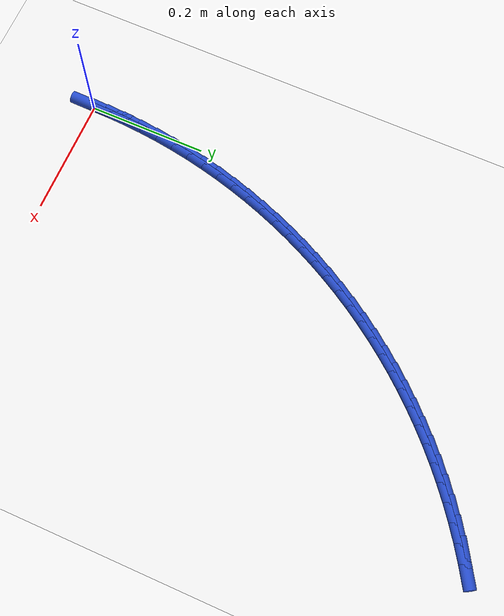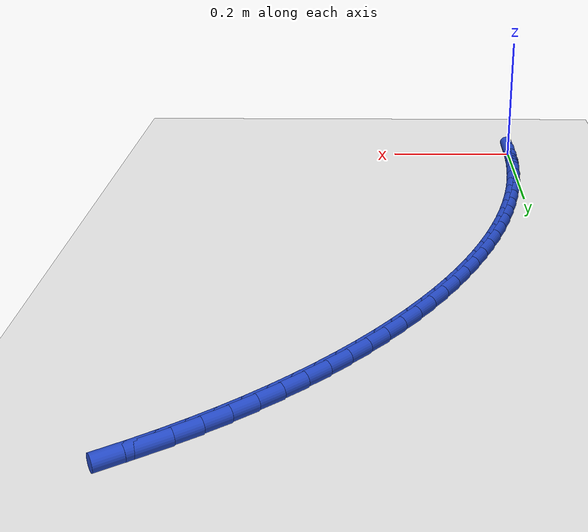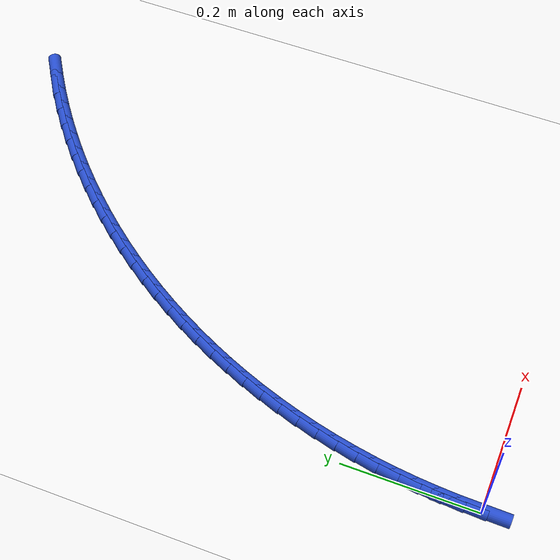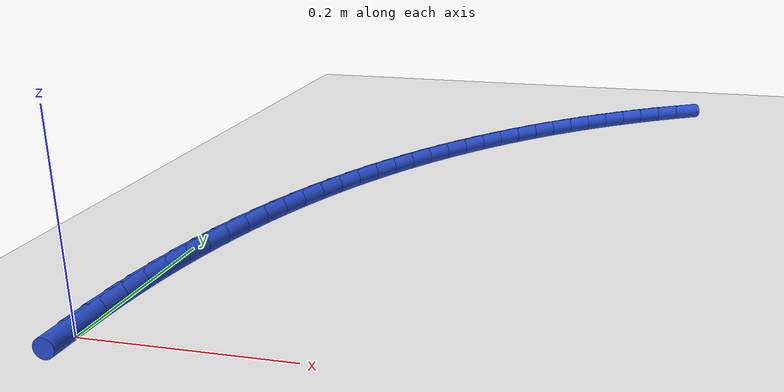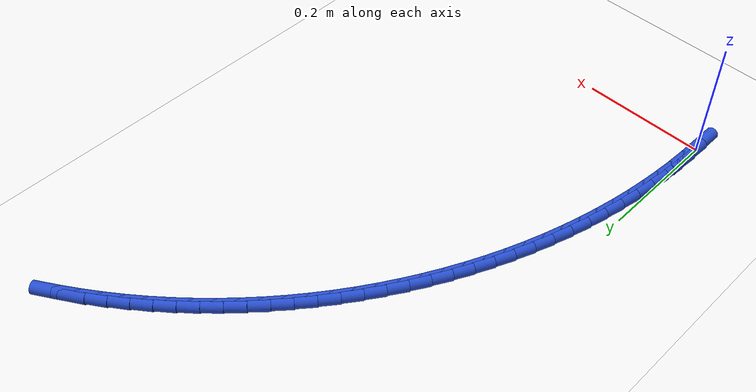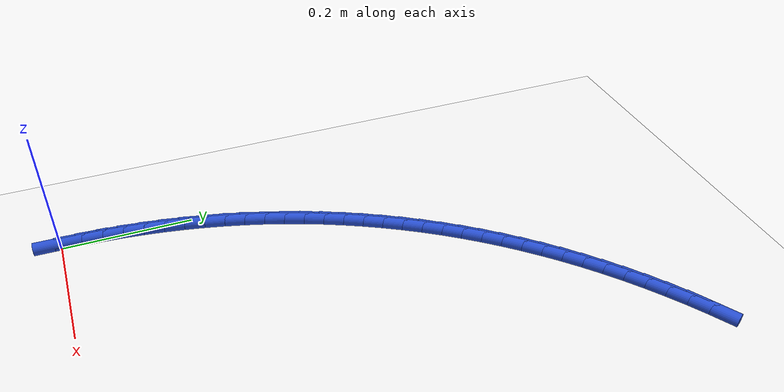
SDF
<sdf version="1.6">
 <world name="default">
  <model name="ground_plane">
   <static>1</static>
   <link name="link">
    <collision name="collision">
     <geometry><plane><normal>0 0 1</normal><size>100 100</size></plane></geometry>
     <surface><friction><ode><mu>100</mu><mu2>50</mu2></ode></friction></surface>
    </collision>
    <visual name="visual">
     <cast_shadows>0</cast_shadows>
     <geometry><plane><normal>0 0 1</normal><size>100 100</size></plane></geometry>
     <material>
      <script><uri>file://media/materials/scripts/gazebo.material</uri><name>Gazebo/WhiteGlow</name></script>
     </material>
    </visual>
   </link>
  </model>
  <model name="line">
   <static>1</static>
   <link name="link_0">
    <pose>-1.734723475976807e-18 -4.163336342344337e-17 0.01 0 1.57 1.5549824605830722</pose>
    <collision name="collision">
     <geometry><cylinder><radius>0.01</radius><length>0.08</length></cylinder></geometry>
    </collision>
    <visual name="visual">
     <material>
      <script><name>Gazebo/Blue</name><uri>file://media/materials/scripts/gazebo.material</uri></script>
     </material>
     <geometry><cylinder><radius>0.01</radius><length>0.08</length></cylinder></geometry>
    </visual>
   </link>
   <static>1</static>
   <link name="link_1">
    <pose>0.0004967404176957579 0.03140908126714605 0.01 0 1.57 1.5234431790212397</pose>
    <collision name="collision">
     <geometry><cylinder><radius>0.01</radius><length>0.08</length></cylinder></geometry>
    </collision>
    <visual name="visual">
     <material>
      <script><name>Gazebo/Blue</name><uri>file://media/materials/scripts/gazebo.material</uri></script>
     </material>
     <geometry><cylinder><radius>0.01</radius><length>0.08</length></cylinder></geometry>
    </visual>
   </link>
   <static>1</static>
   <link name="link_2">
    <pose>0.001983714746050896 0.06278741212037388 0.01 0 1.57 1.492013745148784</pose>
    <collision name="collision">
     <geometry><cylinder><radius>0.01</radius><length>0.08</length></cylinder></geometry>
    </collision>
    <visual name="visual">
     <material>
      <script><name>Gazebo/Blue</name><uri>file://media/materials/scripts/gazebo.material</uri></script>
     </material>
     <geometry><cylinder><radius>0.01</radius><length>0.08</length></cylinder></geometry>
    </visual>
   </link>
   <static>1</static>
   <link name="link_3">
    <pose>0.004456052597967216 0.09410424214576518 0.01 0 1.57 1.460663230333921</pose>
    <collision name="collision">
     <geometry><cylinder><radius>0.01</radius><length>0.08</length></cylinder></geometry>
    </collision>
    <visual name="visual">
     <material>
      <script><name>Gazebo/Blue</name><uri>file://media/materials/scripts/gazebo.material</uri></script>
     </material>
     <geometry><cylinder><radius>0.01</radius><length>0.08</length></cylinder></geometry>
    </visual>
   </link>
   <static>1</static>
   <link name="link_4">
    <pose>0.007908883586346534 0.1253288209294017 0.01 0 1.57 1.4293602481064798</pose>
    <collision name="collision">
     <geometry><cylinder><radius>0.01</radius><length>0.08</length></cylinder></geometry>
    </collision>
    <visual name="visual">
     <material>
      <script><name>Gazebo/Blue</name><uri>file://media/materials/scripts/gazebo.material</uri></script>
     </material>
     <geometry><cylinder><radius>0.01</radius><length>0.08</length></cylinder></geometry>
    </visual>
   </link>
   <static>1</static>
   <link name="link_5">
    <pose>0.012337337324090649 0.15643039805736514 0.01 0 1.57 1.3980731401243338</pose>
    <collision name="collision">
     <geometry><cylinder><radius>0.01</radius><length>0.08</length></cylinder></geometry>
    </collision>
    <visual name="visual">
     <material>
      <script><name>Gazebo/Blue</name><uri>file://media/materials/scripts/gazebo.material</uri></script>
     </material>
     <geometry><cylinder><radius>0.01</radius><length>0.08</length></cylinder></geometry>
    </visual>
   </link>
   <static>1</static>
   <link name="link_6">
    <pose>0.017736543424101373 0.18737822311573732 0.01 0 1.57 1.3667701578968918</pose>
    <collision name="collision">
     <geometry><cylinder><radius>0.01</radius><length>0.08</length></cylinder></geometry>
    </collision>
    <visual name="visual">
     <material>
      <script><name>Gazebo/Blue</name><uri>file://media/materials/scripts/gazebo.material</uri></script>
     </material>
     <geometry><cylinder><radius>0.01</radius><length>0.08</length></cylinder></geometry>
    </visual>
   </link>
   <static>1</static>
   <link name="link_7">
    <pose>0.024101631499280515 0.21814154569059982 0.01 0 1.57 1.33541964308203</pose>
    <collision name="collision">
     <geometry><cylinder><radius>0.01</radius><length>0.08</length></cylinder></geometry>
    </collision>
    <visual name="visual">
     <material>
      <script><name>Gazebo/Blue</name><uri>file://media/materials/scripts/gazebo.material</uri></script>
     </material>
     <geometry><cylinder><radius>0.01</radius><length>0.08</length></cylinder></geometry>
    </visual>
   </link>
   <static>1</static>
   <link name="link_8">
    <pose>0.03142773116252987 0.24868961536803458 0.01 0 1.57 1.3039902092095739</pose>
    <collision name="collision">
     <geometry><cylinder><radius>0.01</radius><length>0.08</length></cylinder></geometry>
    </collision>
    <visual name="visual">
     <material>
      <script><name>Gazebo/Blue</name><uri>file://media/materials/scripts/gazebo.material</uri></script>
     </material>
     <geometry><cylinder><radius>0.01</radius><length>0.08</length></cylinder></geometry>
    </visual>
   </link>
   <static>1</static>
   <link name="link_9">
    <pose>0.03970997202675125 0.27899168173412314 0.01 0 1.57 1.2724509276477411</pose>
    <collision name="collision">
     <geometry><cylinder><radius>0.01</radius><length>0.08</length></cylinder></geometry>
    </collision>
    <visual name="visual">
     <material>
      <script><name>Gazebo/Blue</name><uri>file://media/materials/scripts/gazebo.material</uri></script>
     </material>
     <geometry><cylinder><radius>0.01</radius><length>0.08</length></cylinder></geometry>
    </visual>
   </link>
   <static>1</static>
   <link name="link_10">
    <pose>0.0489434837048465 0.3090169943749474 0.01 0 1.57 1.240823195224093</pose>
    <collision name="collision">
     <geometry><cylinder><radius>0.01</radius><length>0.08</length></cylinder></geometry>
    </collision>
    <visual name="visual">
     <material>
      <script><name>Gazebo/Blue</name><uri>file://media/materials/scripts/gazebo.material</uri></script>
     </material>
     <geometry><cylinder><radius>0.01</radius><length>0.08</length></cylinder></geometry>
    </visual>
   </link>
   <static>1</static>
   <link name="link_11">
    <pose>0.05912185180525515 0.33873530455404977 0.01 0 1.57 1.2092839136622617</pose>
    <collision name="collision">
     <geometry><cylinder><radius>0.01</radius><length>0.08</length></cylinder></geometry>
    </collision>
    <visual name="visual">
     <material>
      <script><name>Gazebo/Blue</name><uri>file://media/materials/scripts/gazebo.material</uri></script>
     </material>
     <geometry><cylinder><radius>0.01</radius><length>0.08</length></cylinder></geometry>
    </visual>
   </link>
   <static>1</static>
   <link name="link_12">
    <pose>0.07023248591856804 0.3681183702448164 0.01 0 1.57 1.1778544797898043</pose>
    <collision name="collision">
     <geometry><cylinder><radius>0.01</radius><length>0.08</length></cylinder></geometry>
    </collision>
    <visual name="visual">
     <material>
      <script><name>Gazebo/Blue</name><uri>file://media/materials/scripts/gazebo.material</uri></script>
     </material>
     <geometry><cylinder><radius>0.01</radius><length>0.08</length></cylinder></geometry>
    </visual>
   </link>
   <static>1</static>
   <link name="link_13">
    <pose>0.08226125163091373 0.39713845109809387 0.01 0 1.57 1.1465039649749418</pose>
    <collision name="collision">
     <geometry><cylinder><radius>0.01</radius><length>0.08</length></cylinder></geometry>
    </collision>
    <visual name="visual">
     <material>
      <script><name>Gazebo/Blue</name><uri>file://media/materials/scripts/gazebo.material</uri></script>
     </material>
     <geometry><cylinder><radius>0.01</radius><length>0.08</length></cylinder></geometry>
    </visual>
   </link>
   <static>1</static>
   <link name="link_14">
    <pose>0.0951940145284208 0.4257678067647291 0.01 0 1.57 1.1152009827475025</pose>
    <collision name="collision">
     <geometry><cylinder><radius>0.01</radius><length>0.08</length></cylinder></geometry>
    </collision>
    <visual name="visual">
     <material>
      <script><name>Gazebo/Blue</name><uri>file://media/materials/scripts/gazebo.material</uri></script>
     </material>
     <geometry><cylinder><radius>0.01</radius><length>0.08</length></cylinder></geometry>
    </visual>
   </link>
   <static>1</static>
   <link name="link_15">
    <pose>0.10901664019721781 0.4539786968955689 0.01 0 1.57 1.0839138747653538</pose>
    <collision name="collision">
     <geometry><cylinder><radius>0.01</radius><length>0.08</length></cylinder></geometry>
    </collision>
    <visual name="visual">
     <material>
      <script><name>Gazebo/Blue</name><uri>file://media/materials/scripts/gazebo.material</uri></script>
     </material>
     <geometry><cylinder><radius>0.01</radius><length>0.08</length></cylinder></geometry>
    </visual>
   </link>
   <static>1</static>
   <link name="link_16">
    <pose>0.12371499422343338 0.4817433811414599 0.01 0 1.57 1.0526108925379154</pose>
    <collision name="collision">
     <geometry><cylinder><radius>0.01</radius><length>0.08</length></cylinder></geometry>
    </collision>
    <visual name="visual">
     <material>
      <script><name>Gazebo/Blue</name><uri>file://media/materials/scripts/gazebo.material</uri></script>
     </material>
     <geometry><cylinder><radius>0.01</radius><length>0.08</length></cylinder></geometry>
    </visual>
   </link>
   <static>1</static>
   <link name="link_17">
    <pose>0.13927494219319608 0.5090341191532493 0.01 0 1.57 1.0212603777230493</pose>
    <collision name="collision">
     <geometry><cylinder><radius>0.01</radius><length>0.08</length></cylinder></geometry>
    </collision>
    <visual name="visual">
     <material>
      <script><name>Gazebo/Blue</name><uri>file://media/materials/scripts/gazebo.material</uri></script>
     </material>
     <geometry><cylinder><radius>0.01</radius><length>0.08</length></cylinder></geometry>
    </visual>
   </link>
   <static>1</static>
   <link name="link_18">
    <pose>0.15568234969263436 0.5358231705817831 0.01 0 1.57 0.9898309438505934</pose>
    <collision name="collision">
     <geometry><cylinder><radius>0.01</radius><length>0.08</length></cylinder></geometry>
    </collision>
    <visual name="visual">
     <material>
      <script><name>Gazebo/Blue</name><uri>file://media/materials/scripts/gazebo.material</uri></script>
     </material>
     <geometry><cylinder><radius>0.01</radius><length>0.08</length></cylinder></geometry>
    </visual>
   </link>
   <static>1</static>
   <link name="link_19">
    <pose>0.17292308230787706 0.5620827950779088 0.01 0 1.57 0.9582916622887631</pose>
    <collision name="collision">
     <geometry><cylinder><radius>0.01</radius><length>0.08</length></cylinder></geometry>
    </collision>
    <visual name="visual">
     <material>
      <script><name>Gazebo/Blue</name><uri>file://media/materials/scripts/gazebo.material</uri></script>
     </material>
     <geometry><cylinder><radius>0.01</radius><length>0.08</length></cylinder></geometry>
    </visual>
   </link>
   <static>1</static>
   <link name="link_20">
    <pose>0.19098300562505255 0.587785252292473 0.01 0 1.57 0.9266639298651125</pose>
    <collision name="collision">
     <geometry><cylinder><radius>0.01</radius><length>0.08</length></cylinder></geometry>
    </collision>
    <visual name="visual">
     <material>
      <script><name>Gazebo/Blue</name><uri>file://media/materials/scripts/gazebo.material</uri></script>
     </material>
     <geometry><cylinder><radius>0.01</radius><length>0.08</length></cylinder></geometry>
    </visual>
   </link>
   <static>1</static>
   <link name="link_21">
    <pose>0.20984667182164554 0.6129037561235587 0.01 0 1.57 0.8951246483032806</pose>
    <collision name="collision">
     <geometry><cylinder><radius>0.01</radius><length>0.08</length></cylinder></geometry>
    </collision>
    <visual name="visual">
     <material>
      <script><name>Gazebo/Blue</name><uri>file://media/materials/scripts/gazebo.material</uri></script>
     </material>
     <geometry><cylinder><radius>0.01</radius><length>0.08</length></cylinder></geometry>
    </visual>
   </link>
   <static>1</static>
   <link name="link_22">
    <pose>0.22949337944056533 0.6374153374581951 0.01 0 1.57 0.8636952144308283</pose>
    <collision name="collision">
     <geometry><cylinder><radius>0.01</radius><length>0.08</length></cylinder></geometry>
    </collision>
    <visual name="visual">
     <material>
      <script><name>Gazebo/Blue</name><uri>file://media/materials/scripts/gazebo.material</uri></script>
     </material>
     <geometry><cylinder><radius>0.01</radius><length>0.08</length></cylinder></geometry>
    </visual>
   </link>
   <static>1</static>
   <link name="link_23">
    <pose>0.2499011136160772 0.6612979814306476 0.01 0 1.57 0.8323446996159628</pose>
    <collision name="collision">
     <geometry><cylinder><radius>0.01</radius><length>0.08</length></cylinder></geometry>
    </collision>
    <visual name="visual">
     <material>
      <script><name>Gazebo/Blue</name><uri>file://media/materials/scripts/gazebo.material</uri></script>
     </material>
     <geometry><cylinder><radius>0.01</radius><length>0.08</length></cylinder></geometry>
    </visual>
   </link>
   <static>1</static>
   <link name="link_24">
    <pose>0.2710478594824465 0.6845296731751811 0.01 0 1.57 0.801041717388523</pose>
    <collision name="collision">
     <geometry><cylinder><radius>0.01</radius><length>0.08</length></cylinder></geometry>
    </collision>
    <visual name="visual">
     <material>
      <script><name>Gazebo/Blue</name><uri>file://media/materials/scripts/gazebo.material</uri></script>
     </material>
     <geometry><cylinder><radius>0.01</radius><length>0.08</length></cylinder></geometry>
    </visual>
   </link>
   <static>1</static>
   <link name="link_25">
    <pose>0.2929116021739386 0.7070883978260614 0.01 0 1.57 0.7697546094063747</pose>
    <collision name="collision">
     <geometry><cylinder><radius>0.01</radius><length>0.08</length></cylinder></geometry>
    </collision>
    <visual name="visual">
     <material>
      <script><name>Gazebo/Blue</name><uri>file://media/materials/scripts/gazebo.material</uri></script>
     </material>
     <geometry><cylinder><radius>0.01</radius><length>0.08</length></cylinder></geometry>
    </visual>
   </link>
   <static>1</static>
   <link name="link_26">
    <pose>0.31547032682481874 0.7289521405175534 0.01 0 1.57 0.738451627178934</pose>
    <collision name="collision">
     <geometry><cylinder><radius>0.01</radius><length>0.08</length></cylinder></geometry>
    </collision>
    <visual name="visual">
     <material>
      <script><name>Gazebo/Blue</name><uri>file://media/materials/scripts/gazebo.material</uri></script>
     </material>
     <geometry><cylinder><radius>0.01</radius><length>0.08</length></cylinder></geometry>
    </visual>
   </link>
   <static>1</static>
   <link name="link_27">
    <pose>0.33870201856935234 0.7500988863839227 0.01 0 1.57 0.7071011123640703</pose>
    <collision name="collision">
     <geometry><cylinder><radius>0.01</radius><length>0.08</length></cylinder></geometry>
    </collision>
    <visual name="visual">
     <material>
      <script><name>Gazebo/Blue</name><uri>file://media/materials/scripts/gazebo.material</uri></script>
     </material>
     <geometry><cylinder><radius>0.01</radius><length>0.08</length></cylinder></geometry>
    </visual>
   </link>
   <static>1</static>
   <link name="link_28">
    <pose>0.3625846625418047 0.7705066205594346 0.01 0 1.57 0.675671678491614</pose>
    <collision name="collision">
     <geometry><cylinder><radius>0.01</radius><length>0.08</length></cylinder></geometry>
    </collision>
    <visual name="visual">
     <material>
      <script><name>Gazebo/Blue</name><uri>file://media/materials/scripts/gazebo.material</uri></script>
     </material>
     <geometry><cylinder><radius>0.01</radius><length>0.08</length></cylinder></geometry>
    </visual>
   </link>
   <static>1</static>
   <link name="link_29">
    <pose>0.387096243876441 0.7901533281783543 0.01 0 1.57 0.6441323969297859</pose>
    <collision name="collision">
     <geometry><cylinder><radius>0.01</radius><length>0.08</length></cylinder></geometry>
    </collision>
    <visual name="visual">
     <material>
      <script><name>Gazebo/Blue</name><uri>file://media/materials/scripts/gazebo.material</uri></script>
     </material>
     <geometry><cylinder><radius>0.01</radius><length>0.08</length></cylinder></geometry>
    </visual>
   </link>
   <static>1</static>
   <link name="link_30">
    <pose>0.41221474770752686 0.8090169943749475 0.01 0 1.57 0.6125046645061313</pose>
    <collision name="collision">
     <geometry><cylinder><radius>0.01</radius><length>0.08</length></cylinder></geometry>
    </collision>
    <visual name="visual">
     <material>
      <script><name>Gazebo/Blue</name><uri>file://media/materials/scripts/gazebo.material</uri></script>
     </material>
     <geometry><cylinder><radius>0.01</radius><length>0.08</length></cylinder></geometry>
    </visual>
   </link>
   <static>1</static>
   <link name="link_31">
    <pose>0.43791720492209096 0.8270769176921228 0.01 0 1.57 0.5809653829443019</pose>
    <collision name="collision">
     <geometry><cylinder><radius>0.01</radius><length>0.08</length></cylinder></geometry>
    </collision>
    <visual name="visual">
     <material>
      <script><name>Gazebo/Blue</name><uri>file://media/materials/scripts/gazebo.material</uri></script>
     </material>
     <geometry><cylinder><radius>0.01</radius><length>0.08</length></cylinder></geometry>
    </visual>
   </link>
   <static>1</static>
   <link name="link_32">
    <pose>0.4641768294182168 0.8443176503073655 0.01 0 1.57 0.5495359490718427</pose>
    <collision name="collision">
     <geometry><cylinder><radius>0.01</radius><length>0.08</length></cylinder></geometry>
    </collision>
    <visual name="visual">
     <material>
      <script><name>Gazebo/Blue</name><uri>file://media/materials/scripts/gazebo.material</uri></script>
     </material>
     <geometry><cylinder><radius>0.01</radius><length>0.08</length></cylinder></geometry>
    </visual>
   </link>
   <static>1</static>
   <static>1</static>
   <static>1</static>
   <static>1</static>
   <static>1</static>
   <static>1</static>
   <static>1</static>
   <static>1</static>
   <static>1</static>
   <static>1</static>
   <static>1</static>
   <static>1</static>
   <static>1</static>
   <static>1</static>
   <static>1</static>
   <static>1</static>
   <static>1</static>
   <static>1</static>
   <static>1</static>
   <static>1</static>
   <static>1</static>
   <static>1</static>
   <static>1</static>
   <static>1</static>
   <static>1</static>
   <static>1</static>
   <static>1</static>
   <static>1</static>
   <static>1</static>
   <static>1</static>
   <static>1</static>
   <static>1</static>
   <static>1</static>
   <static>1</static>
   <static>1</static>
   <static>1</static>
   <static>1</static>
   <static>1</static>
   <static>1</static>
   <static>1</static>
   <static>1</static>
   <static>1</static>
   <static>1</static>
   <static>1</static>
   <static>1</static>
   <static>1</static>
   <static>1</static>
   <static>1</static>
   <static>1</static>
   <static>1</static>
   <static>1</static>
   <static>1</static>
   <static>1</static>
   <static>1</static>
   <static>1</static>
   <static>1</static>
   <static>1</static>
   <static>1</static>
   <static>1</static>
   <static>1</static>
   <static>1</static>
   <static>1</static>
   <static>1</static>
   <static>1</static>
   <static>1</static>
   <static>1</static>
   <static>1</static>
   <static>1</static>
   <static>1</static>
   <static>1</static>
   <static>1</static>
   <static>1</static>
   <static>1</static>
   <static>1</static>
   <static>1</static>
   <static>1</static>
   <static>1</static>
   <static>1</static>
   <static>1</static>
   <static>1</static>
   <static>1</static>
   <static>1</static>
   <static>1</static>
   <static>1</static>
   <static>1</static>
   <static>1</static>
   <static>1</static>
   <static>1</static>
   <static>1</static>
   <static>1</static>
   <static>1</static>
   <static>1</static>
   <static>1</static>
   <static>1</static>
   <static>1</static>
   <static>1</static>
   <static>1</static>
   <static>1</static>
   <static>1</static>
   <static>1</static>
   <static>1</static>
   <static>1</static>
   <static>1</static>
   <static>1</static>
   <static>1</static>
   <static>1</static>
   <static>1</static>
   <static>1</static>
   <static>1</static>
   <static>1</static>
   <static>1</static>
   <static>1</static>
   <static>1</static>
   <static>1</static>
   <static>1</static>
   <static>1</static>
   <static>1</static>
   <static>1</static>
   <static>1</static>
   <static>1</static>
   <static>1</static>
   <static>1</static>
   <static>1</static>
   <static>1</static>
   <static>1</static>
   <static>1</static>
   <static>1</static>
   <static>1</static>
   <static>1</static>
   <static>1</static>
   <static>1</static>
   <static>1</static>
   <static>1</static>
   <static>1</static>
   <static>1</static>
   <static>1</static>
   <static>1</static>
   <static>1</static>
   <static>1</static>
   <static>1</static>
   <static>1</static>
   <static>1</static>
   <static>1</static>
   <static>1</static>
   <static>1</static>
   <static>1</static>
   <static>1</static>
   <static>1</static>
   <static>1</static>
   <static>1</static>
   <static>1</static>
   <static>1</static>
   <static>1</static>
   <static>1</static>
   <static>1</static>
   <static>1</static>
   <static>1</static>
   <static>1</static>
   <static>1</static>
   <static>1</static>
   <static>1</static>
   <static>1</static>
   <static>1</static>
   <static>1</static>
   <static>1</static>
   <static>1</static>
   <static>1</static>
   <static>1</static>
   <static>1</static>
   <link name="link_201">
    <pose>0.0004983638800618436 0.03140908126714666 0.01 0 1.57 1.55493078587583</pose>
    <collision name="collision">
     <geometry><cylinder><radius>0.01</radius><length>0.08</length></cylinder></geometry>
    </collision>
    <visual name="visual">
     <material>
      <script><name>Gazebo/Blue</name><uri>file://media/materials/scripts/gazebo.material</uri></script>
     </material>
     <geometry><cylinder><radius>0.01</radius><length>0.08</length></cylinder></geometry>
    </visual>
   </link>
  </model>
 </world>
</sdf>
